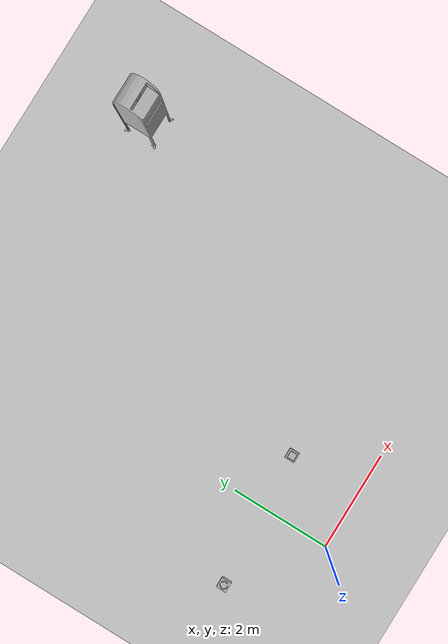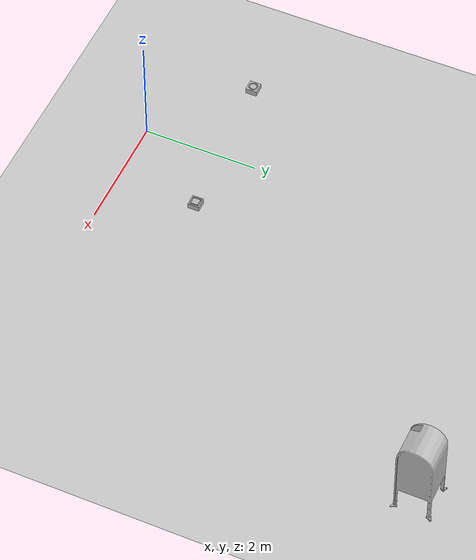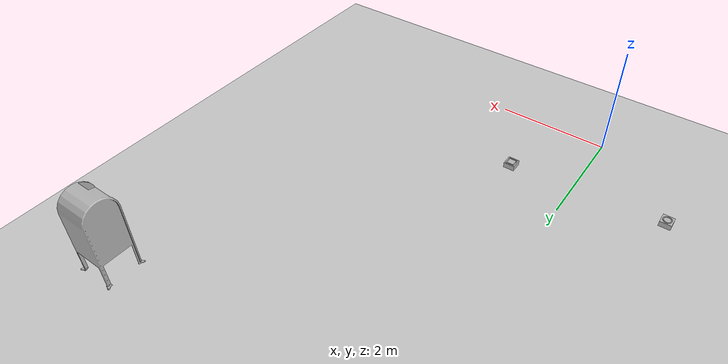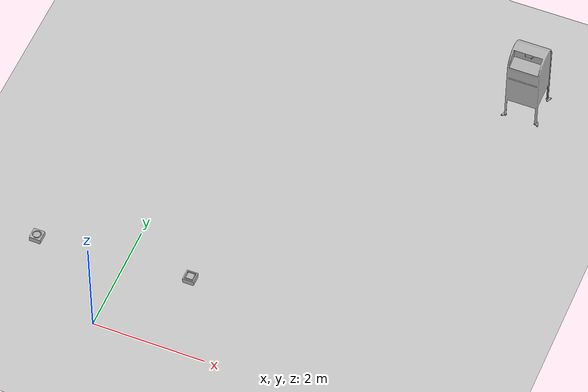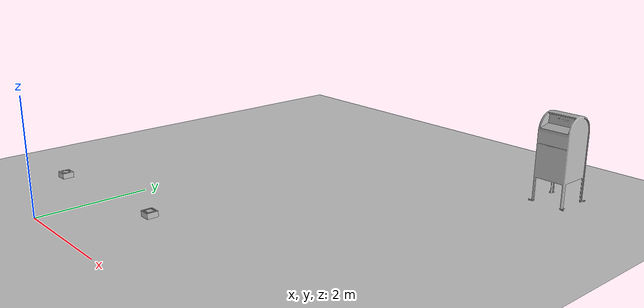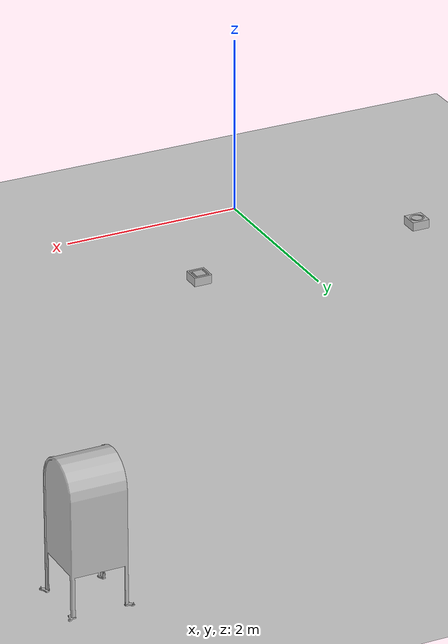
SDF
<sdf version="1.6">
 <world name="default">
  <light name="sun" type="directional">
   <pose>0 0 10 0 -0 0</pose>
   <diffuse>0.8 0.8 0.8 1</diffuse>
   <specular>0.2 0.2 0.2 1</specular>
   <attenuation>
    <range>1000</range>
    <constant>0.9</constant>
    <linear>0.01</linear>
    <quadratic>0.001</quadratic>
   </attenuation>
   <direction>-0.5 0.1 -0.9</direction>
  </light>
  <model name="ground_plane">
   <static>1</static>
   <link name="link">
    <collision name="collision">
     <geometry><plane><normal>0 0 1</normal><size>100 100</size></plane></geometry>
     <surface>
      <contact><collide_bitmask>65535</collide_bitmask></contact>
      <friction><ode><mu>100</mu><mu2>50</mu2></ode></friction>
     </surface>
    </collision>
    <visual name="visual">
     <cast_shadows>0</cast_shadows>
     <geometry><plane><normal>0 0 1</normal><size>100 100</size></plane></geometry>
     <material>
      <script><uri>file://media/materials/scripts/gazebo.material</uri><name>Gazebo/Grey</name></script>
     </material>
    </visual>
   </link>
  </model>
  <model name="postbox">
   <static>0</static>
   <link name="link">
    <collision name="collision">
     <geometry><mesh><uri>model://postbox/meshes/postbox.dae</uri></mesh></geometry>
    </collision>
    <visual name="visual"><geometry><mesh><uri>model://postbox/meshes/postbox.dae</uri></mesh></geometry></visual>
    <inertial>
     <inertia><ixx>1</ixx><ixy>0</ixy><ixz>0</ixz><iyy>1</iyy><iyz>0</iyz><izz>1</izz></inertia>
     <mass>1</mass>
    </inertial>
   </link>
   <pose>4.99995 6.99993 -1e-06 3e-06 -0 -0.000434</pose>
  </model>
  <gravity>0 0 -9.8</gravity>
  <magnetic_field>6e-06 2.3e-05 -4.2e-05</magnetic_field>
  <atmosphere type="adiabatic"/>
  <physics name="default_physics" default="0" type="ode">
   <max_step_size>0.001</max_step_size>
   <real_time_factor>1</real_time_factor>
   <real_time_update_rate>1000</real_time_update_rate>
  </physics>
  <scene><ambient>0.4 0.4 0.4 1</ambient><background>0.7 0.7 0.7 1</background><shadows>1</shadows></scene>
  <audio><device>default</device></audio>
  <spherical_coordinates>
   <surface_model>EARTH_WGS84</surface_model>
   <latitude_deg>0</latitude_deg>
   <longitude_deg>0</longitude_deg>
   <elevation>0</elevation>
   <heading_deg>0</heading_deg>
  </spherical_coordinates>
  <model name="big_circle_path">
   <pose>-1.70268 1.25677 0 0 -0 0</pose>
   <static>1</static>
   <link name="link">
    <inertial>
     <mass>1</mass>
     <inertia><ixx>0.083</ixx><ixy>0</ixy><ixz>0</ixz><iyy>0.083</iyy><iyz>0</iyz><izz>0.083</izz></inertia>
    </inertial>
    <collision name="collision">
     <geometry><mesh><uri>model://bigCircle/BigCircle.stl</uri><scale>0.001 0.001 0.001</scale></mesh></geometry>
    </collision>
    <visual name="visual">
     <geometry><mesh><uri>model://bigCircle/BigCircle.stl</uri><scale>0.001 0.001 0.001</scale></mesh></geometry>
    </visual>
   </link>
  </model>
  <model name="big_square_path">
   <pose>1.12128 1.43906 0 0 -0 0</pose>
   <static>1</static>
   <link name="link">
    <inertial><mass>1</mass></inertial>
    <collision name="collision">
     <geometry><mesh><uri>model://bigSquare/BigSquare.stl</uri><scale>0.001 0.001 0.001</scale></mesh></geometry>
    </collision>
    <visual name="visual">
     <geometry><mesh><uri>model://bigSquare/BigSquare.stl</uri><scale>0.001 0.001 0.001</scale></mesh></geometry>
    </visual>
   </link>
  </model>
 </world>
</sdf>
